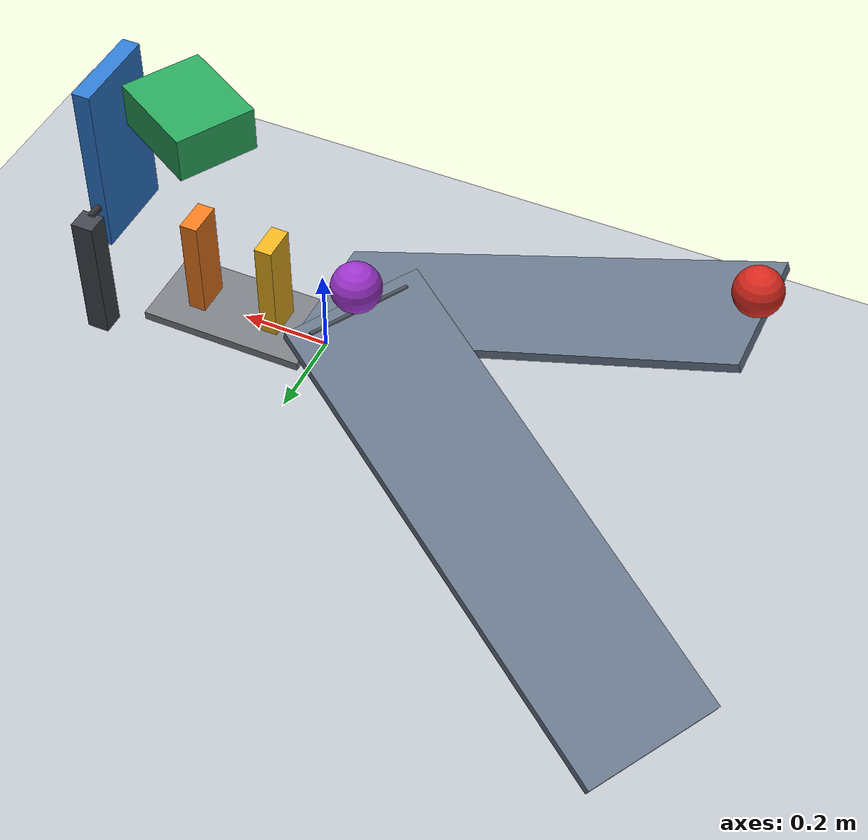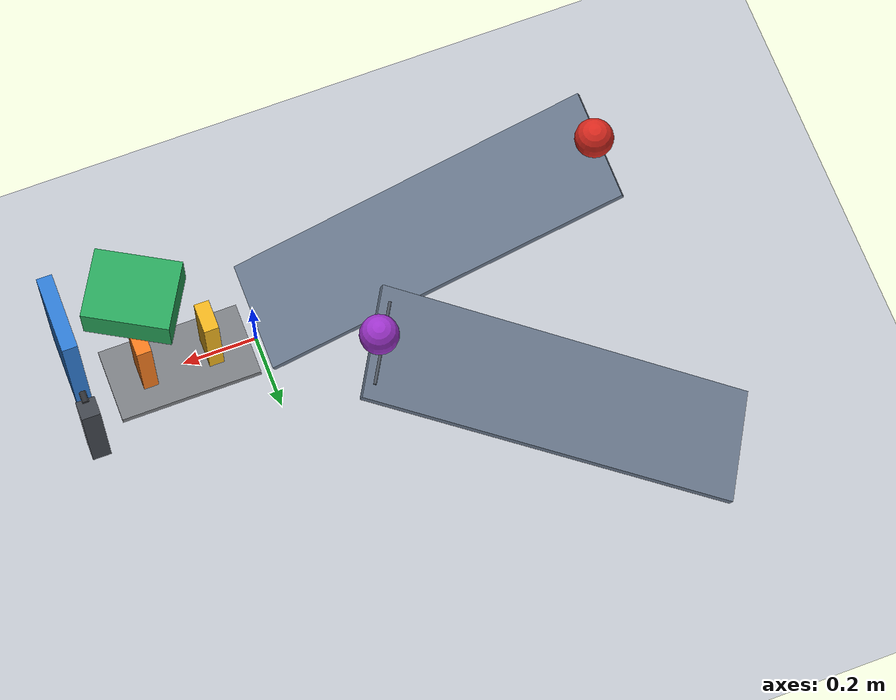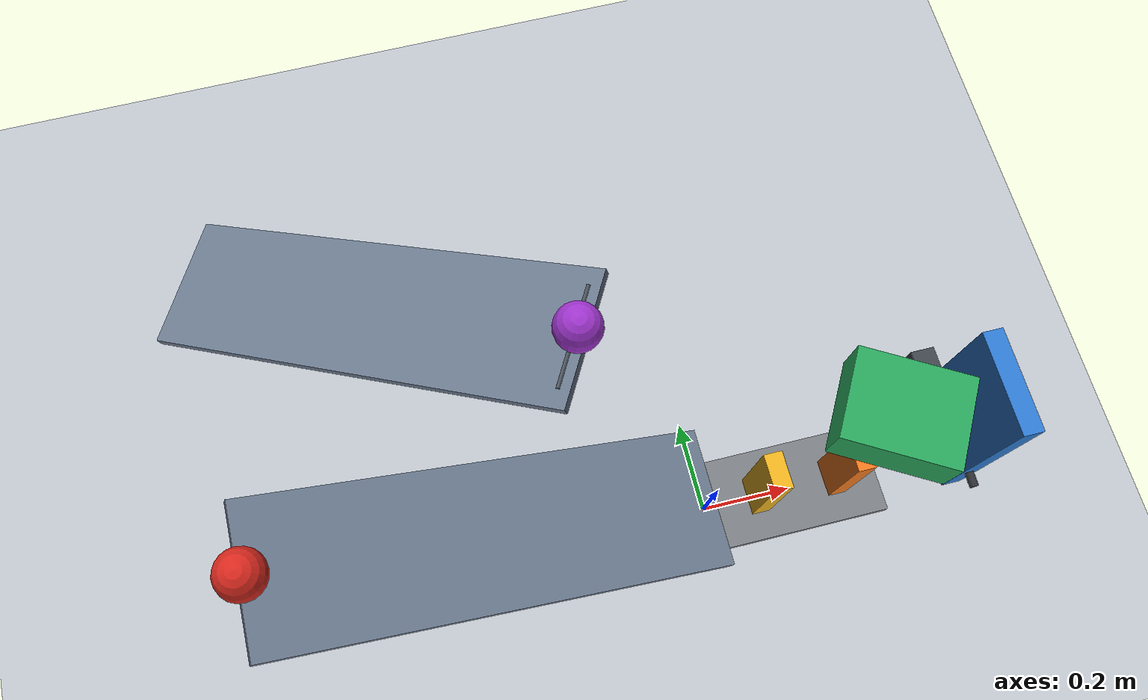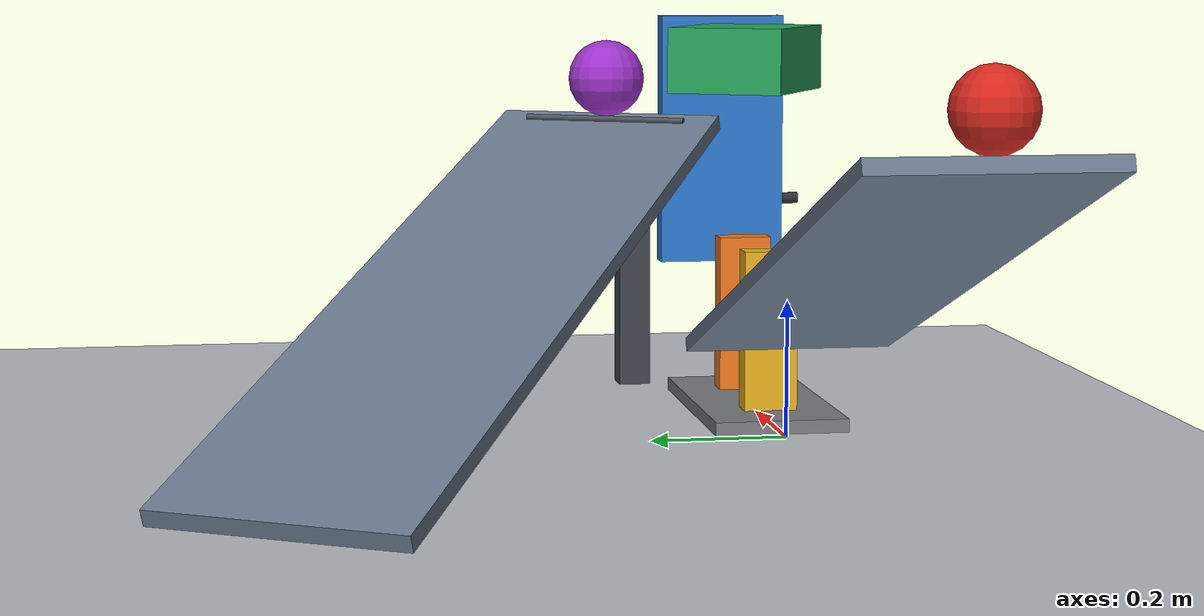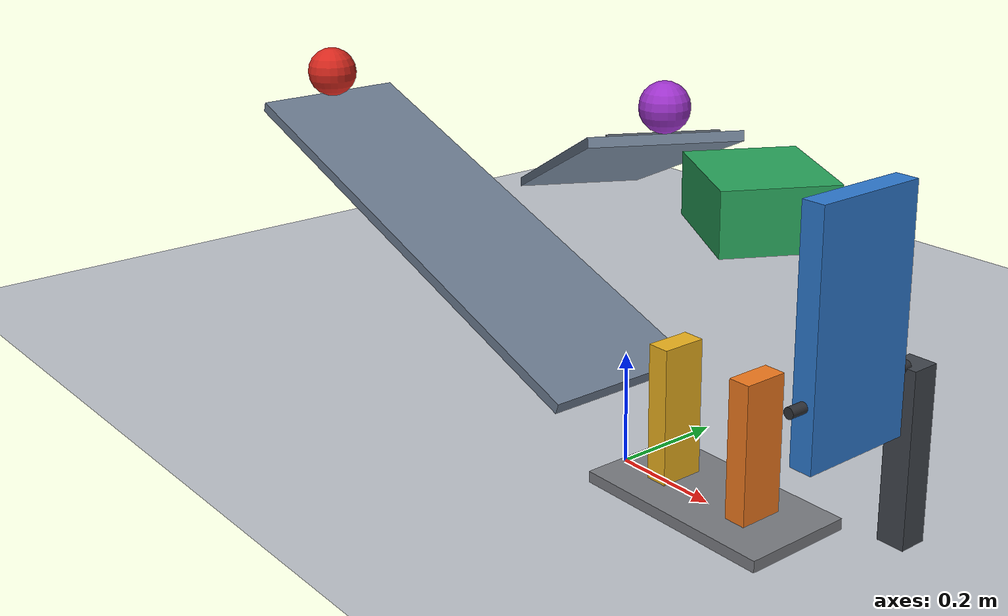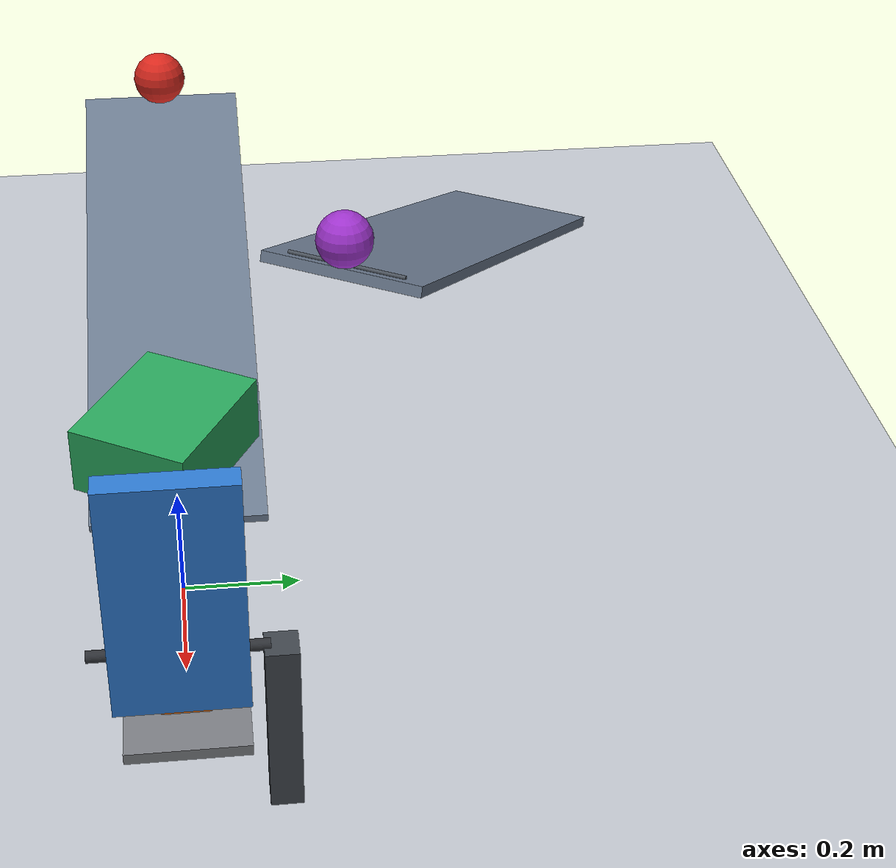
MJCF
<mujoco model="passive_domino_flap_chain">
  <compiler angle="degree" autolimits="true"/>
  <option timestep="0.002" gravity="0 0 -9.81" integrator="implicitfast" solver="Newton" iterations="100" tolerance="1e-10"/>

  <visual>
    <headlight ambient="0.35 0.35 0.35" diffuse="0.65 0.65 0.65" specular="0.15 0.15 0.15"/>
    <map znear="0.01"/>
  </visual>

  <worldbody>
    <light name="overhead" pos="-0.2 -1.5 3" dir="0 0 -1" directional="true"/>
    <camera name="overview" pos="2.2 3.1 2.2" xyaxes="-0.82 0.57 0 -0.26 -0.37 0.89"/>

    <geom name="floor" type="plane" size="3 3 0.1" rgba="0.75 0.77 0.80 1" friction="0.70 0.005 0.010" condim="6" priority="1" solref="0.004 0.690107" solimp="0.95 0.95 0.001"/>

    <!-- Ramp1's top surface is exactly 1.00 m long and 0.30 m wide.
         Its downhill endpoint is (0, 0, 0.15). -->
    <body name="ramp1" pos="-0.469846310 0 0.321010072" quat="0.984807753 0 0.173648178 0">
      <geom name="ramp1_surface" type="box" pos="0 0 -0.01" size="0.50 0.15 0.01" rgba="0.42 0.48 0.56 1" friction="0.70 0.005 0.0001" condim="6" solref="0.004 0.690107" solimp="0.95 0.95 0.001"/>
    </body>

    <body name="ball1" pos="-0.922591614 0 0.539004774">
      <freejoint name="ball1_free"/>
      <geom name="ball1_sphere" type="sphere" size="0.05" mass="0.20" rgba="0.85 0.16 0.12 1" friction="0.70 0.005 0.0001" condim="6" solref="0.004 0.690107" solimp="0.95 0.95 0.001"/>
    </body>

    <!-- A 20 mm plinth places domino2's impact inside flap1's lower half.
         Ramp1's exit-to-domino1 near-face gap is 0.10 m. -->
    <body name="domino_plinth" pos="0.21 0 0.01">
      <geom name="domino_plinth_top" type="box" size="0.19 0.10 0.01" rgba="0.48 0.49 0.51 1" friction="0.70 0.005 0.0001" condim="3" solref="0.004 0.690107" solimp="0.95 0.95 0.001"/>
    </body>

    <body name="domino1" pos="0.12 0 0.14">
      <freejoint name="domino1_free"/>
      <geom name="domino1_box" type="box" size="0.02 0.04 0.12" mass="0.25" rgba="0.93 0.70 0.12 1" friction="0.70 0.005 0.0001" condim="3" solref="0.004 0.690107" solimp="0.95 0.95 0.001"/>
    </body>

    <body name="domino2" pos="0.30 0 0.14">
      <freejoint name="domino2_free"/>
      <geom name="domino2_box" type="box" size="0.02 0.04 0.12" mass="0.25" rgba="0.95 0.48 0.12 1" friction="0.70 0.005 0.0001" condim="3" solref="0.004 0.690107" solimp="0.95 0.95 0.001"/>
    </body>

    <body name="flap1" pos="0.48 0 0.30">
      <joint name="flap1_hinge" type="hinge" axis="0 -1 0" range="0 65" damping="0.04" armature="0" solreflimit="0.004 1" solimplimit="0.99 0.99 0.001"/>
      <geom name="flap1_panel" type="box" pos="0 0 0.10" size="0.02 0.10 0.20" mass="0.30" rgba="0.18 0.48 0.82 1" friction="0.70 0.005 0.0001" condim="3" solref="0.004 0.690107" solimp="0.95 0.95 0.001"/>
    </body>

    <body name="flap1_mount" pos="0.48 0 0.30">
      <geom name="flap1_axle" type="cylinder" quat="0.707106781 0.707106781 0 0" size="0.009 0.13" contype="0" conaffinity="0" rgba="0.18 0.19 0.21 1"/>
      <geom name="flap1_mount_post" type="box" pos="0 0.145 -0.15" size="0.025 0.025 0.15" contype="0" conaffinity="0" rgba="0.25 0.27 0.30 1"/>
    </body>

    <body name="cart1" pos="0.29 0 0.539004774" quat="0.965925826 0 0 -0.258819045">
      <joint name="cart1_slide" type="slide" axis="-1 0 0" range="0 0.47" damping="0.20" armature="0" solreflimit="0.004 1" solimplimit="0.99 0.99 0.001"/>
      <geom name="cart1_box" type="box" size="0.11 0.09 0.05" mass="0.50" rgba="0.16 0.65 0.36 1" friction="0.70 0.005 0.0001" condim="3" solref="0.004 0.690107" solimp="0.95 0.95 0.001"/>
    </body>

    <!-- Ramp2 is 1.00 m by 0.30 m at 20 degrees.
         Its low-end top surface is 0.15 m above the floor.
         The small transverse detent holds ball2 until cart1 arrives. -->
    <body name="ramp2" pos="-0.630364429 0.531372651 0.321010072" quat="0.951251243 -0.044943456 -0.167731259 -0.254887002">
      <geom name="ramp2_surface" type="box" pos="0 0 -0.01" size="0.50 0.15 0.01" rgba="0.42 0.48 0.56 1" friction="0.70 0.005 0.0001" condim="6" solref="0.004 0.690107" solimp="0.95 0.95 0.001"/>
      <geom name="ramp2_start_detent" type="cylinder" pos="0.475 0 0.00213556" quat="0.707106781 0.707106781 0 0" size="0.004 0.11" rgba="0.30 0.33 0.37 1" friction="0.70 0.005 0.0001" condim="6" solref="0.004 0.690107" solimp="0.95 0.95 0.001"/>
    </body>

    <body name="ball2" pos="-0.238275494 0.305 0.539004774">
      <freejoint name="ball2_free"/>
      <geom name="ball2_sphere" type="sphere" size="0.05" mass="0.20" rgba="0.62 0.20 0.80 1" friction="0.70 0.005 0.0001" condim="6" solref="0.004 0.690107" solimp="0.95 0.95 0.001"/>
    </body>
  </worldbody>

  <!-- Omitted keyframe state fields use qpos0 and zero velocities.
       There are no actuators, controls, or initially moving bodies. -->
  <keyframe>
    <key name="start"/>
  </keyframe>
</mujoco>
